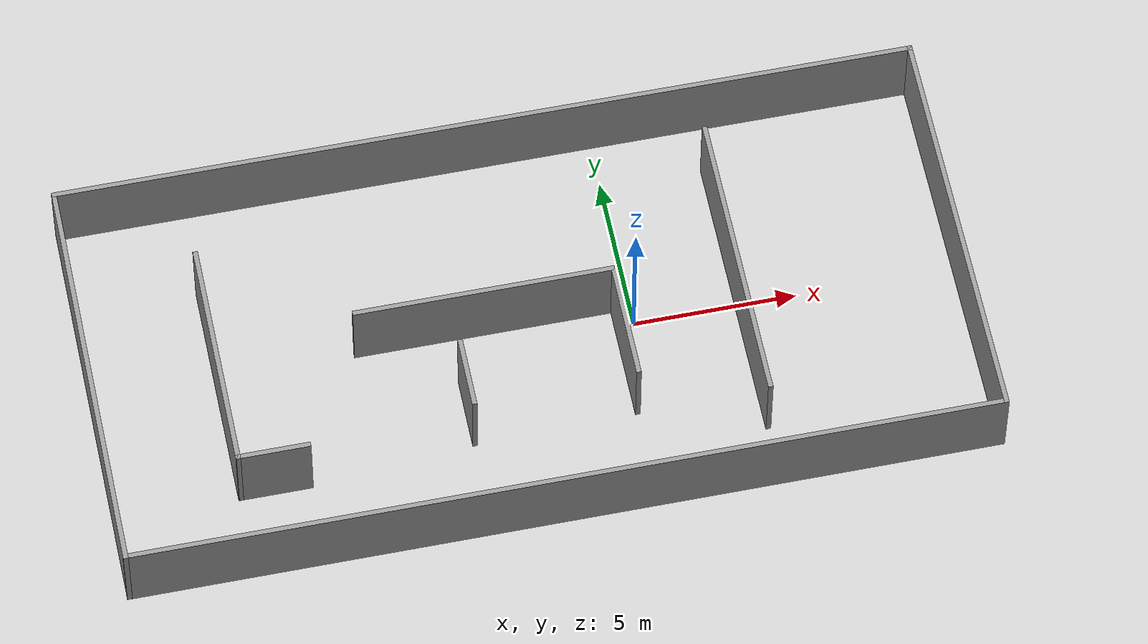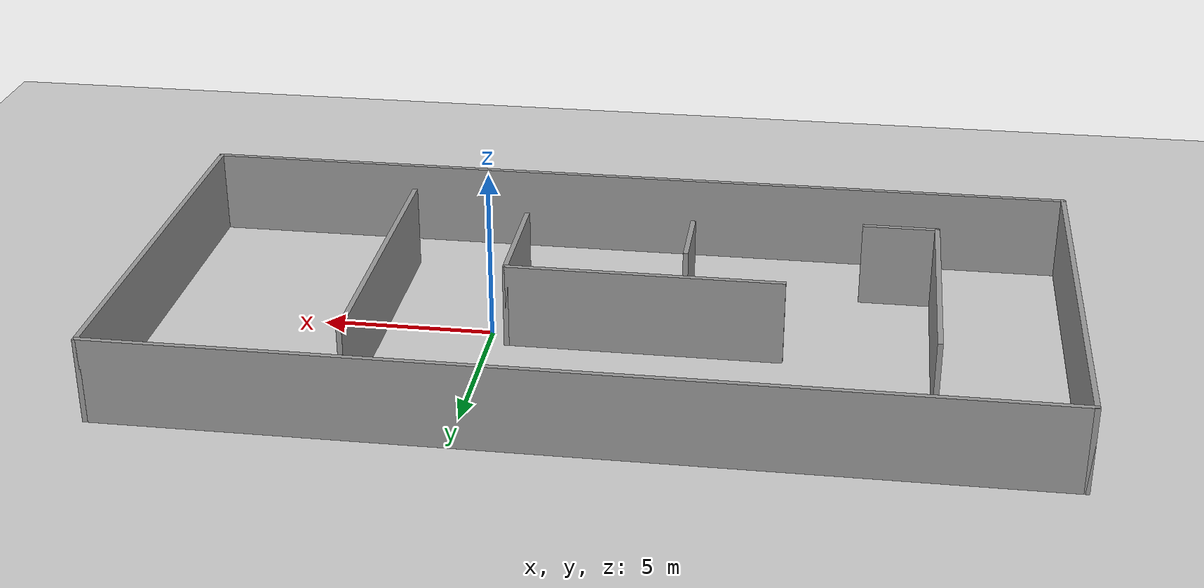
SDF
<sdf version="1.7">
 <world name="default">
  <light name="sun" type="directional">
   <pose>0 0 10 0 -0 0</pose>
   <diffuse>0.8 0.8 0.8 1</diffuse>
   <specular>0.2 0.2 0.2 1</specular>
   <attenuation>
    <range>1000</range>
    <constant>0.9</constant>
    <linear>0.01</linear>
    <quadratic>0.001</quadratic>
   </attenuation>
   <direction>-0.5 0.1 -0.9</direction>
   <spot><inner_angle>0</inner_angle><outer_angle>0</outer_angle><falloff>0</falloff></spot>
  </light>
  <model name="ground_plane">
   <static>1</static>
   <link name="link">
    <collision name="collision">
     <geometry><plane><normal>0 0 1</normal><size>100 100</size></plane></geometry>
     <surface><friction><ode><mu>100</mu><mu2>50</mu2></ode></friction></surface>
    </collision>
    <visual name="visual">
     <cast_shadows>0</cast_shadows>
     <geometry><plane><normal>0 0 1</normal><size>100 100</size></plane></geometry>
     <material>
      <script><uri>file://media/materials/scripts/gazebo.material</uri><name>Gazebo/Grey</name></script>
     </material>
    </visual>
   </link>
  </model>
  <gravity>0 0 -9.8</gravity>
  <magnetic_field>6e-06 2.3e-05 -4.2e-05</magnetic_field>
  <atmosphere type="adiabatic"/>
  <physics type="ode">
   <max_step_size>0.001</max_step_size>
   <real_time_factor>1</real_time_factor>
   <real_time_update_rate>1000</real_time_update_rate>
  </physics>
  <scene><ambient>0.4 0.4 0.4 1</ambient><background>0.7 0.7 0.7 1</background><shadows>1</shadows></scene>
  <audio><device>default</device></audio>
  <spherical_coordinates>
   <surface_model>EARTH_WGS84</surface_model>
   <latitude_deg>0</latitude_deg>
   <longitude_deg>0</longitude_deg>
   <elevation>0</elevation>
   <heading_deg>0</heading_deg>
  </spherical_coordinates>
  <model name="maze">
   <pose>-3.28143 0.135377 0 0 -0 0</pose>
   <link name="Wall_13">
    <collision name="Wall_13_Collision">
     <geometry><box><size>26.5 0.15 2.5</size></box></geometry>
     <pose>0 0 1.25 0 -0 0</pose>
    </collision>
    <visual name="Wall_13_Visual">
     <pose>0 0 1.25 0 -0 0</pose>
     <geometry><box><size>26.5 0.15 2.5</size></box></geometry>
     <material>
      <script><uri>file://media/materials/scripts/gazebo.material</uri><name>Gazebo/Grey</name></script>
      <ambient>1 1 1 1</ambient>
     </material>
     <meta><layer>0</layer></meta>
    </visual>
    <pose>-0 6.3 0 0 -0 0</pose>
   </link>
   <link name="Wall_14">
    <collision name="Wall_14_Collision">
     <geometry><box><size>12.75 0.15 2.5</size></box></geometry>
     <pose>0 0 1.25 0 -0 0</pose>
    </collision>
    <visual name="Wall_14_Visual">
     <pose>0 0 1.25 0 -0 0</pose>
     <geometry><box><size>12.75 0.15 2.5</size></box></geometry>
     <material>
      <script><uri>file://media/materials/scripts/gazebo.material</uri><name>Gazebo/Grey</name></script>
      <ambient>1 1 1 1</ambient>
     </material>
     <meta><layer>0</layer></meta>
    </visual>
    <pose>13.175 -0 0 0 -0 -1.5708</pose>
   </link>
   <link name="Wall_15">
    <collision name="Wall_15_Collision">
     <geometry><box><size>26.5 0.15 2.5</size></box></geometry>
     <pose>0 0 1.25 0 -0 0</pose>
    </collision>
    <visual name="Wall_15_Visual">
     <pose>0 0 1.25 0 -0 0</pose>
     <geometry><box><size>26.5 0.15 2.5</size></box></geometry>
     <material>
      <script><uri>file://media/materials/scripts/gazebo.material</uri><name>Gazebo/Grey</name></script>
      <ambient>1 1 1 1</ambient>
     </material>
     <meta><layer>0</layer></meta>
    </visual>
    <pose>-0 -6.3 0 0 -0 3.14159</pose>
   </link>
   <link name="Wall_16">
    <collision name="Wall_16_Collision">
     <geometry><box><size>12.75 0.15 2.5</size></box></geometry>
     <pose>0 0 1.25 0 -0 0</pose>
    </collision>
    <visual name="Wall_16_Visual">
     <pose>0 0 1.25 0 -0 0</pose>
     <geometry><box><size>12.75 0.15 2.5</size></box></geometry>
     <material>
      <script><uri>file://media/materials/scripts/gazebo.material</uri><name>Gazebo/Grey</name></script>
      <ambient>1 1 1 1</ambient>
     </material>
     <meta><layer>0</layer></meta>
    </visual>
    <pose>-13.175 -0 0 0 -0 1.5708</pose>
   </link>
   <link name="Wall_18">
    <collision name="Wall_18_Collision">
     <geometry><box><size>7.25 0.15 2.5</size></box></geometry>
     <pose>0 0 1.25 0 -0 0</pose>
    </collision>
    <visual name="Wall_18_Visual">
     <pose>0 0 1.25 0 -0 0</pose>
     <geometry><box><size>7.25 0.15 2.5</size></box></geometry>
     <material>
      <script><uri>file://media/materials/scripts/gazebo.material</uri><name>Gazebo/Grey</name></script>
      <ambient>1 1 1 1</ambient>
     </material>
     <meta><layer>0</layer></meta>
    </visual>
    <pose>-9.375 -0.13 0 0 -0 -1.5708</pose>
   </link>
   <link name="Wall_19">
    <collision name="Wall_19_Collision">
     <geometry><box><size>2.25 0.15 2.5</size></box></geometry>
     <pose>0 0 1.25 0 -0 0</pose>
    </collision>
    <visual name="Wall_19_Visual">
     <pose>0 0 1.25 0 -0 0</pose>
     <geometry><box><size>2.25 0.15 2.5</size></box></geometry>
     <material>
      <script><uri>file://media/materials/scripts/gazebo.material</uri><name>Gazebo/Grey</name></script>
      <ambient>1 1 1 1</ambient>
     </material>
     <meta><layer>0</layer></meta>
    </visual>
    <pose>-8.325 -3.68 0 0 -0 0</pose>
   </link>
   <link name="Wall_21">
    <collision name="Wall_21_Collision">
     <geometry><box><size>8 0.15 2.5</size></box></geometry>
     <pose>0 0 1.25 0 -0 0</pose>
    </collision>
    <visual name="Wall_21_Visual">
     <pose>0 0 1.25 0 -0 0</pose>
     <geometry><box><size>8 0.15 2.5</size></box></geometry>
     <material>
      <script><uri>file://media/materials/scripts/gazebo.material</uri><name>Gazebo/Grey</name></script>
      <ambient>1 1 1 1</ambient>
     </material>
     <meta><layer>0</layer></meta>
    </visual>
    <pose>-1.17 0.46 0 0 -0 0</pose>
   </link>
   <link name="Wall_22">
    <collision name="Wall_22_Collision">
     <geometry><box><size>3.75 0.15 2.5</size></box></geometry>
     <pose>0 0 1.25 0 -0 0</pose>
    </collision>
    <visual name="Wall_22_Visual">
     <pose>0 0 1.25 0 -0 0</pose>
     <geometry><box><size>3.75 0.15 2.5</size></box></geometry>
     <material>
      <script><uri>file://media/materials/scripts/gazebo.material</uri><name>Gazebo/Grey</name></script>
      <ambient>1 1 1 1</ambient>
     </material>
     <meta><layer>0</layer></meta>
    </visual>
    <pose>2.755 -1.34 0 0 -0 -1.5708</pose>
   </link>
   <link name="Wall_24">
    <collision name="Wall_24_Collision">
     <geometry><box><size>9.25 0.15 2.5</size></box></geometry>
     <pose>0 0 1.25 0 -0 0</pose>
    </collision>
    <visual name="Wall_24_Visual">
     <pose>0 0 1.25 0 -0 0</pose>
     <geometry><box><size>9.25 0.15 2.5</size></box></geometry>
     <material>
      <script><uri>file://media/materials/scripts/gazebo.material</uri><name>Gazebo/Grey</name></script>
      <ambient>1 1 1 1</ambient>
     </material>
     <meta><layer>0</layer></meta>
    </visual>
    <pose>6.465 0.15 0 0 -0 -1.5708</pose>
   </link>
   <link name="Wall_26">
    <collision name="Wall_26_Collision">
     <geometry><box><size>2.25 0.15 2.5</size></box></geometry>
     <pose>0 0 1.25 0 -0 0</pose>
    </collision>
    <visual name="Wall_26_Visual">
     <pose>0 0 1.25 0 -0 0</pose>
     <geometry><box><size>2.25 0.15 2.5</size></box></geometry>
     <material>
      <script><uri>file://media/materials/scripts/gazebo.material</uri><name>Gazebo/Grey</name></script>
      <ambient>1 1 1 1</ambient>
     </material>
     <meta><layer>0</layer></meta>
    </visual>
    <pose>-2.215 -2.19 0 0 -0 -1.5708</pose>
   </link>
   <static>1</static>
  </model>
 </world>
</sdf>
